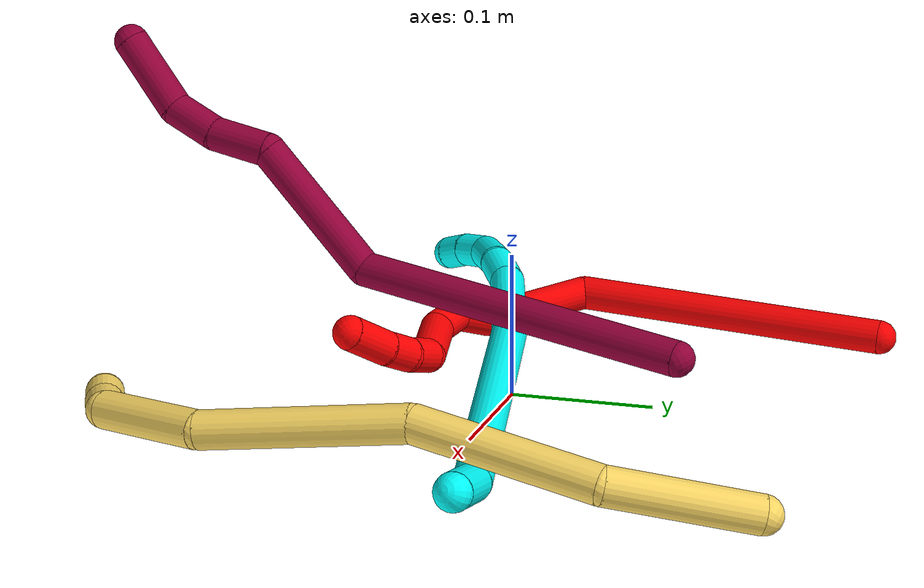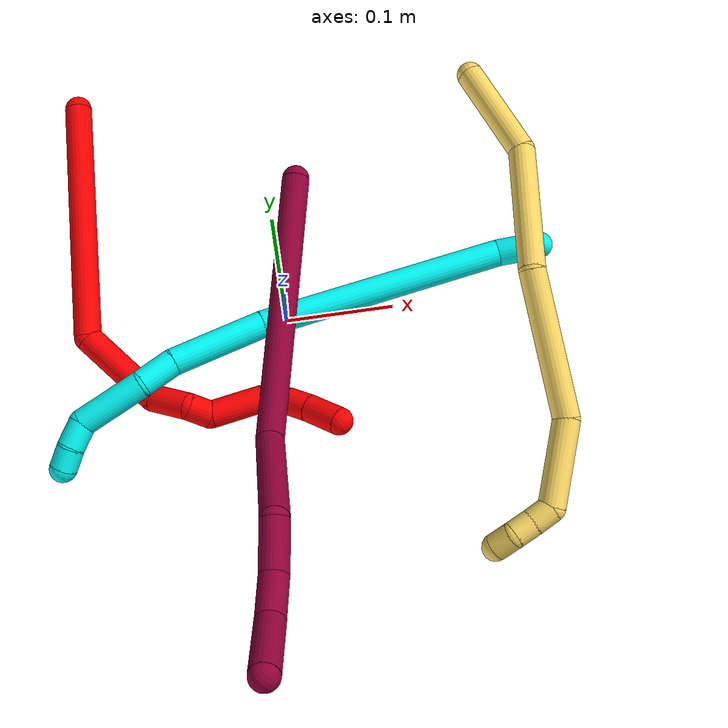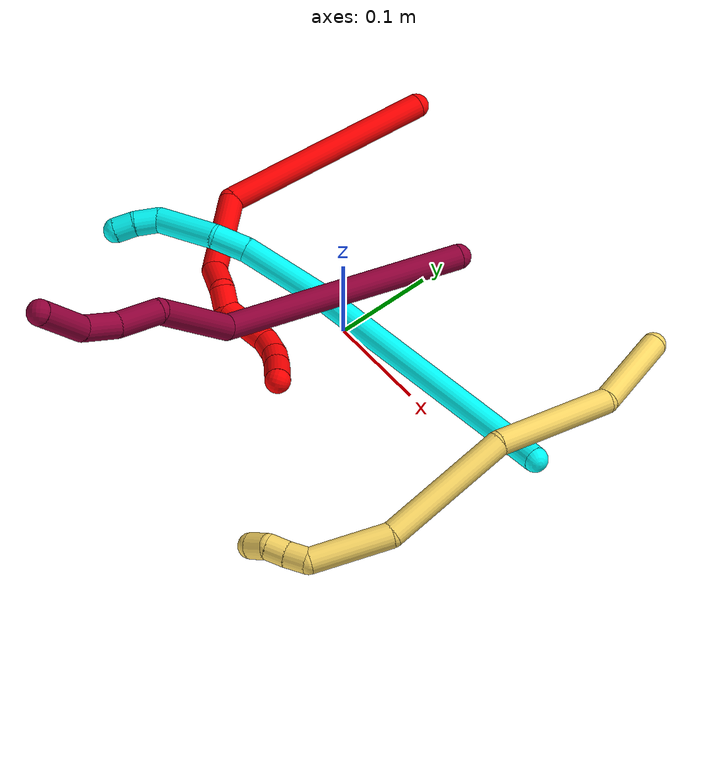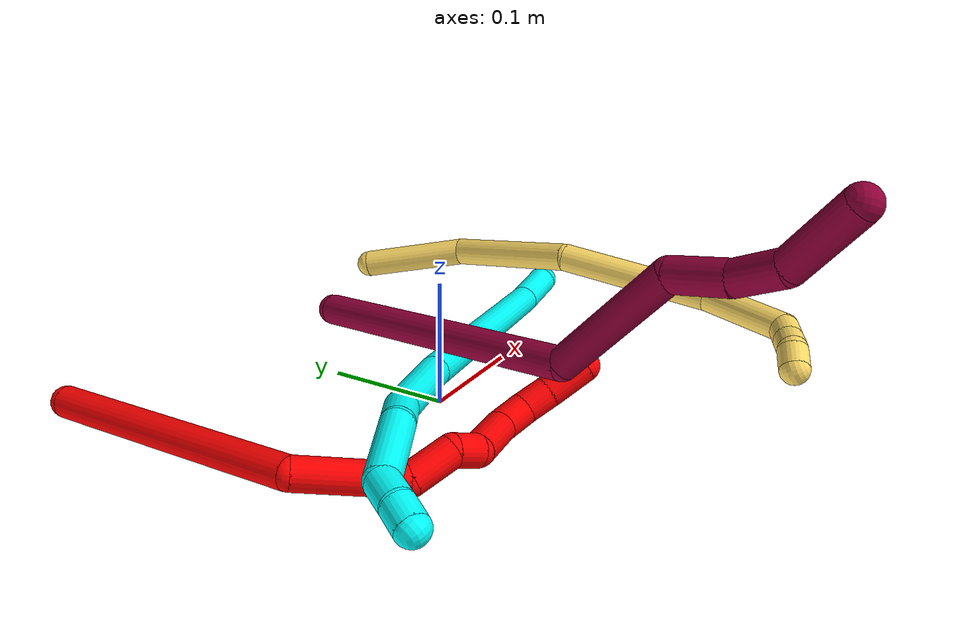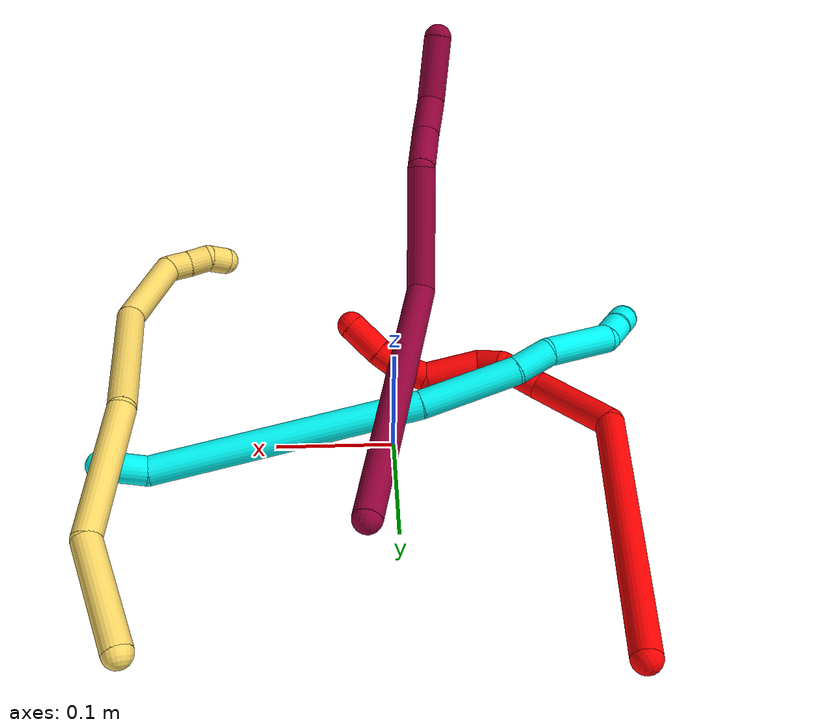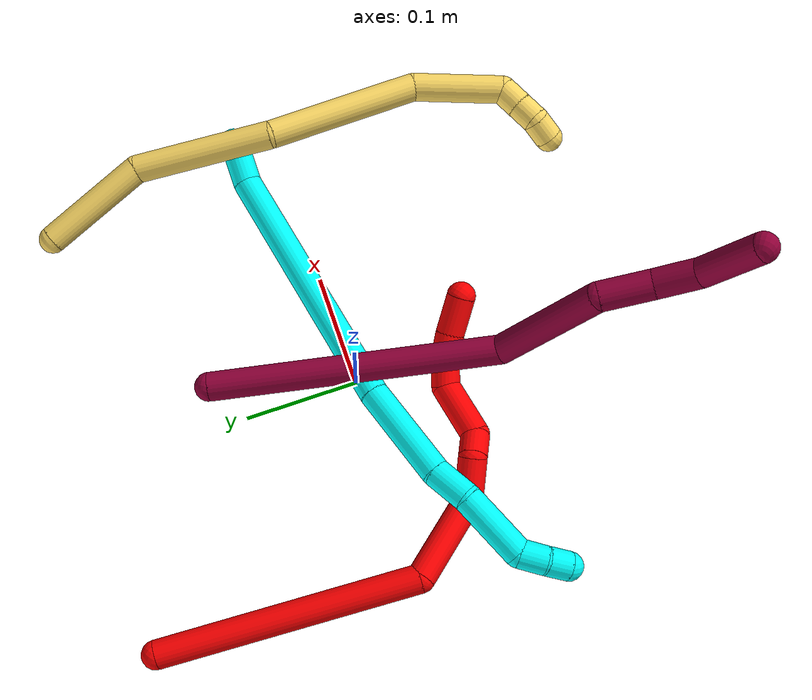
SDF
<sdf version="1.7">
 <world name="default">
  <model name="bin">
   <static>1</static>
   <link name="bottom">
    <collision name="collision-bottom">
     <pose>0 0 -0.01 0 -0 0</pose>
     <geometry><box><size>0.8 0.6 0.02</size></box></geometry>
     <surface>
      <friction><ode><mu>100</mu><mu2>100</mu2></ode></friction>
      <contact><collide_bitmask>65535</collide_bitmask></contact>
     </surface>
    </collision>
   </link>
   <link name="west_wall">
    <collision name="collision-west_wall">
     <pose>-0.41 0 0.1 0 -0 0</pose>
     <geometry><box><size>0.02 0.6 0.2</size></box></geometry>
     <surface>
      <friction><ode><mu>100</mu><mu2>100</mu2></ode></friction>
      <contact><collide_bitmask>65535</collide_bitmask></contact>
     </surface>
    </collision>
   </link>
   <link name="east_wall">
    <collision name="collision-east_wall">
     <pose>0.41 0 0.1 0 -0 0</pose>
     <geometry><box><size>0.02 0.6 0.2</size></box></geometry>
     <surface>
      <friction><ode><mu>100</mu><mu2>100</mu2></ode></friction>
      <contact><collide_bitmask>65535</collide_bitmask></contact>
     </surface>
    </collision>
   </link>
   <link name="south_wall">
    <collision name="collision-south_wall">
     <pose>0 -0.31 0.1 0 -0 0</pose>
     <geometry><box><size>0.8 0.02 0.2</size></box></geometry>
     <surface>
      <friction><ode><mu>100</mu><mu2>100</mu2></ode></friction>
      <contact><collide_bitmask>65535</collide_bitmask></contact>
     </surface>
    </collision>
   </link>
   <link name="north_wall">
    <collision name="collision-north_wall">
     <pose>0 0.31 0.1 0 -0 0</pose>
     <geometry><box><size>0.8 0.02 0.2</size></box></geometry>
     <surface>
      <friction><ode><mu>100</mu><mu2>100</mu2></ode></friction>
      <contact><collide_bitmask>65535</collide_bitmask></contact>
     </surface>
    </collision>
   </link>
  </model>
  <model name="2">
   <static>0</static>
   <link name="2">
    <collision name="collision-cylinder-e_1_1_4">
     <pose>0.044159 -0.078227 0.070506 0.837261 0.39705 0.178542</pose>
     <geometry><cylinder><radius>0.0125</radius><length>0.22839</length></cylinder></geometry>
     <surface>
      <friction><ode><mu>1.16</mu><mu2>1.16</mu2><slip1>0</slip1><slip2>0</slip2></ode></friction>
      <contact><ode><kp>1e+06</kp><kd>1</kd><max_vel>0</max_vel><min_depth>0.001</min_depth></ode></contact>
     </surface>
    </collision>
    <visual name="visual-cylinder-e_1_1_4">
     <pose>0.044159 -0.078227 0.070506 0.837261 0.39705 0.178542</pose>
     <geometry><cylinder><radius>0.0125</radius><length>0.22839</length></cylinder></geometry>
     <material><ambient>1 0 0 1</ambient></material>
    </visual>
    <collision name="collision-cylinder-e_2_4_5">
     <pose>0.104609 -0.193443 0.136747 1.68561 0.412411 0.46103</pose>
     <geometry><cylinder><radius>0.0125</radius><length>0.081285</length></cylinder></geometry>
     <surface>
      <friction><ode><mu>1.16</mu><mu2>1.16</mu2><slip1>0</slip1><slip2>0</slip2></ode></friction>
      <contact><ode><kp>1e+06</kp><kd>1</kd><max_vel>0</max_vel><min_depth>0.001</min_depth></ode></contact>
     </surface>
    </collision>
    <visual name="visual-cylinder-e_2_4_5">
     <pose>0.104609 -0.193443 0.136747 1.68561 0.412411 0.46103</pose>
     <geometry><cylinder><radius>0.0125</radius><length>0.081285</length></cylinder></geometry>
     <material><ambient>1 0 0 1</ambient></material>
    </visual>
    <collision name="collision-cylinder-e_3_5_6">
     <pose>0.134838 -0.239312 0.124642 2.29406 0.866455 1.59583</pose>
     <geometry><cylinder><radius>0.0125</radius><length>0.036582</length></cylinder></geometry>
     <surface>
      <friction><ode><mu>1.16</mu><mu2>1.16</mu2><slip1>0</slip1><slip2>0</slip2></ode></friction>
      <contact><ode><kp>1e+06</kp><kd>1</kd><max_vel>0</max_vel><min_depth>0.001</min_depth></ode></contact>
     </surface>
    </collision>
    <visual name="visual-cylinder-e_3_5_6">
     <pose>0.134838 -0.239312 0.124642 2.29406 0.866455 1.59583</pose>
     <geometry><cylinder><radius>0.0125</radius><length>0.036582</length></cylinder></geometry>
     <material><ambient>1 0 0 1</ambient></material>
    </visual>
    <collision name="collision-cylinder-e_4_6_7">
     <pose>0.151626 -0.257352 0.111375 2.10574 0.261536 0.453678</pose>
     <geometry><cylinder><radius>0.0125</radius><length>0.022047</length></cylinder></geometry>
     <surface>
      <friction><ode><mu>1.16</mu><mu2>1.16</mu2><slip1>0</slip1><slip2>0</slip2></ode></friction>
      <contact><ode><kp>1e+06</kp><kd>1</kd><max_vel>0</max_vel><min_depth>0.001</min_depth></ode></contact>
     </surface>
    </collision>
    <visual name="visual-cylinder-e_4_6_7">
     <pose>0.151626 -0.257352 0.111375 2.10574 0.261536 0.453678</pose>
     <geometry><cylinder><radius>0.0125</radius><length>0.022047</length></cylinder></geometry>
     <material><ambient>1 0 0 1</ambient></material>
    </visual>
    <collision name="collision-cylinder-e_5_7_8">
     <pose>0.160027 -0.27515 0.083024 2.78124 0.222833 1.1016</pose>
     <geometry><cylinder><radius>0.0125</radius><length>0.050234</length></cylinder></geometry>
     <surface>
      <friction><ode><mu>1.16</mu><mu2>1.16</mu2><slip1>0</slip1><slip2>0</slip2></ode></friction>
      <contact><ode><kp>1e+06</kp><kd>1</kd><max_vel>0</max_vel><min_depth>0.001</min_depth></ode></contact>
     </surface>
    </collision>
    <visual name="visual-cylinder-e_5_7_8">
     <pose>0.160027 -0.27515 0.083024 2.78124 0.222833 1.1016</pose>
     <geometry><cylinder><radius>0.0125</radius><length>0.050234</length></cylinder></geometry>
     <material><ambient>1 0 0 1</ambient></material>
    </visual>
    <collision name="collision-cylinder-e_6_8_9">
     <pose>0.174145 -0.289466 0.053288 2.44674 0.768028 1.68022</pose>
     <geometry><cylinder><radius>0.0125</radius><length>0.024663</length></cylinder></geometry>
     <surface>
      <friction><ode><mu>1.16</mu><mu2>1.16</mu2><slip1>0</slip1><slip2>0</slip2></ode></friction>
      <contact><ode><kp>1e+06</kp><kd>1</kd><max_vel>0</max_vel><min_depth>0.001</min_depth></ode></contact>
     </surface>
    </collision>
    <visual name="visual-cylinder-e_6_8_9">
     <pose>0.174145 -0.289466 0.053288 2.44674 0.768028 1.68022</pose>
     <geometry><cylinder><radius>0.0125</radius><length>0.024663</length></cylinder></geometry>
     <material><ambient>1 0 0 1</ambient></material>
    </visual>
    <collision name="collision-cylinder-e_7_9_10">
     <pose>0.19195 -0.300532 0.042936 2.15205 0.961648 1.53711</pose>
     <geometry><cylinder><radius>0.0125</radius><length>0.022529</length></cylinder></geometry>
     <surface>
      <friction><ode><mu>1.16</mu><mu2>1.16</mu2><slip1>0</slip1><slip2>0</slip2></ode></friction>
      <contact><ode><kp>1e+06</kp><kd>1</kd><max_vel>0</max_vel><min_depth>0.001</min_depth></ode></contact>
     </surface>
    </collision>
    <visual name="visual-cylinder-e_7_9_10">
     <pose>0.19195 -0.300532 0.042936 2.15205 0.961648 1.53711</pose>
     <geometry><cylinder><radius>0.0125</radius><length>0.022529</length></cylinder></geometry>
     <material><ambient>1 0 0 1</ambient></material>
    </visual>
    <collision name="collision-cylinder-e_8_10_2">
     <pose>0.21623 -0.313311 0.035832 2.02021 1.07134 1.51456</pose>
     <geometry><cylinder><radius>0.0125</radius><length>0.03427</length></cylinder></geometry>
     <surface>
      <friction><ode><mu>1.16</mu><mu2>1.16</mu2><slip1>0</slip1><slip2>0</slip2></ode></friction>
      <contact><ode><kp>1e+06</kp><kd>1</kd><max_vel>0</max_vel><min_depth>0.001</min_depth></ode></contact>
     </surface>
    </collision>
    <visual name="visual-cylinder-e_8_10_2">
     <pose>0.21623 -0.313311 0.035832 2.02021 1.07134 1.51456</pose>
     <geometry><cylinder><radius>0.0125</radius><length>0.03427</length></cylinder></geometry>
     <material><ambient>1 0 0 1</ambient></material>
    </visual>
    <collision name="collision-sphere-2">
     <pose>0.231272 -0.320703 0.032266 0 -0 0</pose>
     <geometry><sphere><radius>0.0125</radius></sphere></geometry>
     <surface>
      <friction><ode><mu>1.16</mu><mu2>1.16</mu2><slip1>0</slip1><slip2>0</slip2></ode></friction>
      <contact><ode><kp>1e+06</kp><kd>1</kd><max_vel>0</max_vel><min_depth>0.001</min_depth></ode></contact>
     </surface>
    </collision>
    <visual name="visual-sphere-2">
     <pose>0.231272 -0.320703 0.032266 0 -0 0</pose>
     <geometry><sphere><radius>0.0125</radius></sphere></geometry>
     <material><ambient>1 0 0 1</ambient></material>
    </visual>
    <collision name="collision-sphere-10">
     <pose>0.201189 -0.305919 0.039397 0 -0 0</pose>
     <geometry><sphere><radius>0.0125</radius></sphere></geometry>
     <surface>
      <friction><ode><mu>1.16</mu><mu2>1.16</mu2><slip1>0</slip1><slip2>0</slip2></ode></friction>
      <contact><ode><kp>1e+06</kp><kd>1</kd><max_vel>0</max_vel><min_depth>0.001</min_depth></ode></contact>
     </surface>
    </collision>
    <visual name="visual-sphere-10">
     <pose>0.201189 -0.305919 0.039397 0 -0 0</pose>
     <geometry><sphere><radius>0.0125</radius></sphere></geometry>
     <material><ambient>1 0 0 1</ambient></material>
    </visual>
    <collision name="collision-sphere-9">
     <pose>0.182711 -0.295145 0.046475 0 -0 0</pose>
     <geometry><sphere><radius>0.0125</radius></sphere></geometry>
     <surface>
      <friction><ode><mu>1.16</mu><mu2>1.16</mu2><slip1>0</slip1><slip2>0</slip2></ode></friction>
      <contact><ode><kp>1e+06</kp><kd>1</kd><max_vel>0</max_vel><min_depth>0.001</min_depth></ode></contact>
     </surface>
    </collision>
    <visual name="visual-sphere-9">
     <pose>0.182711 -0.295145 0.046475 0 -0 0</pose>
     <geometry><sphere><radius>0.0125</radius></sphere></geometry>
     <material><ambient>1 0 0 1</ambient></material>
    </visual>
    <collision name="collision-sphere-4">
     <pose>0.088318 -0.156453 0.141012 0 -0 0</pose>
     <geometry><sphere><radius>0.0125</radius></sphere></geometry>
     <surface>
      <friction><ode><mu>1.16</mu><mu2>1.16</mu2><slip1>0</slip1><slip2>0</slip2></ode></friction>
      <contact><ode><kp>1e+06</kp><kd>1</kd><max_vel>0</max_vel><min_depth>0.001</min_depth></ode></contact>
     </surface>
    </collision>
    <visual name="visual-sphere-4">
     <pose>0.088318 -0.156453 0.141012 0 -0 0</pose>
     <geometry><sphere><radius>0.0125</radius></sphere></geometry>
     <material><ambient>1 0 0 1</ambient></material>
    </visual>
    <collision name="collision-sphere-1">
     <geometry><sphere><radius>0.0125</radius></sphere></geometry>
     <surface>
      <friction><ode><mu>1.16</mu><mu2>1.16</mu2><slip1>0</slip1><slip2>0</slip2></ode></friction>
      <contact><ode><kp>1e+06</kp><kd>1</kd><max_vel>0</max_vel><min_depth>0.001</min_depth></ode></contact>
     </surface>
    </collision>
    <visual name="visual-sphere-1">
     <geometry><sphere><radius>0.0125</radius></sphere></geometry>
     <material><ambient>1 0 0 1</ambient></material>
    </visual>
    <collision name="collision-sphere-8">
     <pose>0.165578 -0.283787 0.060101 0 -0 0</pose>
     <geometry><sphere><radius>0.0125</radius></sphere></geometry>
     <surface>
      <friction><ode><mu>1.16</mu><mu2>1.16</mu2><slip1>0</slip1><slip2>0</slip2></ode></friction>
      <contact><ode><kp>1e+06</kp><kd>1</kd><max_vel>0</max_vel><min_depth>0.001</min_depth></ode></contact>
     </surface>
    </collision>
    <visual name="visual-sphere-8">
     <pose>0.165578 -0.283787 0.060101 0 -0 0</pose>
     <geometry><sphere><radius>0.0125</radius></sphere></geometry>
     <material><ambient>1 0 0 1</ambient></material>
    </visual>
    <collision name="collision-sphere-5">
     <pose>0.120899 -0.230433 0.132481 0 -0 0</pose>
     <geometry><sphere><radius>0.0125</radius></sphere></geometry>
     <surface>
      <friction><ode><mu>1.16</mu><mu2>1.16</mu2><slip1>0</slip1><slip2>0</slip2></ode></friction>
      <contact><ode><kp>1e+06</kp><kd>1</kd><max_vel>0</max_vel><min_depth>0.001</min_depth></ode></contact>
     </surface>
    </collision>
    <visual name="visual-sphere-5">
     <pose>0.120899 -0.230433 0.132481 0 -0 0</pose>
     <geometry><sphere><radius>0.0125</radius></sphere></geometry>
     <material><ambient>1 0 0 1</ambient></material>
    </visual>
    <collision name="collision-sphere-6">
     <pose>0.148776 -0.248191 0.116804 0 -0 0</pose>
     <geometry><sphere><radius>0.0125</radius></sphere></geometry>
     <surface>
      <friction><ode><mu>1.16</mu><mu2>1.16</mu2><slip1>0</slip1><slip2>0</slip2></ode></friction>
      <contact><ode><kp>1e+06</kp><kd>1</kd><max_vel>0</max_vel><min_depth>0.001</min_depth></ode></contact>
     </surface>
    </collision>
    <visual name="visual-sphere-6">
     <pose>0.148776 -0.248191 0.116804 0 -0 0</pose>
     <geometry><sphere><radius>0.0125</radius></sphere></geometry>
     <material><ambient>1 0 0 1</ambient></material>
    </visual>
    <collision name="collision-sphere-7">
     <pose>0.154476 -0.266513 0.105946 0 -0 0</pose>
     <geometry><sphere><radius>0.0125</radius></sphere></geometry>
     <surface>
      <friction><ode><mu>1.16</mu><mu2>1.16</mu2><slip1>0</slip1><slip2>0</slip2></ode></friction>
      <contact><ode><kp>1e+06</kp><kd>1</kd><max_vel>0</max_vel><min_depth>0.001</min_depth></ode></contact>
     </surface>
    </collision>
    <visual name="visual-sphere-7">
     <pose>0.154476 -0.266513 0.105946 0 -0 0</pose>
     <geometry><sphere><radius>0.0125</radius></sphere></geometry>
     <material><ambient>1 0 0 1</ambient></material>
    </visual>
    <inertial>
     <pose>0.101865 -0.172975 0.083827 0 -0 0</pose>
     <mass>0.5</mass>
     <inertia>
      <ixx>0.001177</ixx>
      <ixy>0</ixy>
      <ixz>0</ixz>
      <iyy>0.000897</iyy>
      <iyz>0</iyz>
      <izz>0.000324</izz>
     </inertia>
    </inertial>
   </link>
   <pose>-0.170132 0.232157 0.011666 1.31181 -1.00429 -0.740061</pose>
  </model>
  <model name="3">
   <static>0</static>
   <link name="3">
    <collision name="collision-cylinder-e_1_1_4">
     <pose>-0.00609 -0.001461 -0.018527 3.06292 -0.316646 -2.65822</pose>
     <geometry><cylinder><radius>0.0125</radius><length>0.039114</length></cylinder></geometry>
     <surface>
      <friction><ode><mu>1.16</mu><mu2>1.16</mu2><slip1>0</slip1><slip2>0</slip2></ode></friction>
      <contact><ode><kp>1e+06</kp><kd>1</kd><max_vel>0</max_vel><min_depth>0.001</min_depth></ode></contact>
     </surface>
    </collision>
    <visual name="visual-cylinder-e_1_1_4">
     <pose>-0.00609 -0.001461 -0.018527 3.06292 -0.316646 -2.65822</pose>
     <geometry><cylinder><radius>0.0125</radius><length>0.039114</length></cylinder></geometry>
     <material><ambient>0.003922 1 0.996078 1</ambient></material>
    </visual>
    <collision name="collision-cylinder-e_2_4_5">
     <pose>-0.084536 -0.001102 -0.128209 -3.12163 -0.670842 3.08435</pose>
     <geometry><cylinder><radius>0.0125</radius><length>0.232791</length></cylinder></geometry>
     <surface>
      <friction><ode><mu>1.16</mu><mu2>1.16</mu2><slip1>0</slip1><slip2>0</slip2></ode></friction>
      <contact><ode><kp>1e+06</kp><kd>1</kd><max_vel>0</max_vel><min_depth>0.001</min_depth></ode></contact>
     </surface>
    </collision>
    <visual name="visual-cylinder-e_2_4_5">
     <pose>-0.084536 -0.001102 -0.128209 -3.12163 -0.670842 3.08435</pose>
     <geometry><cylinder><radius>0.0125</radius><length>0.232791</length></cylinder></geometry>
     <material><ambient>0.003922 1 0.996078 1</ambient></material>
    </visual>
    <collision name="collision-cylinder-e_3_5_6">
     <pose>-0.187599 -0.001217 -0.250776 3.08007 -0.773073 -2.99067</pose>
     <geometry><cylinder><radius>0.0125</radius><length>0.087939</length></cylinder></geometry>
     <surface>
      <friction><ode><mu>1.16</mu><mu2>1.16</mu2><slip1>0</slip1><slip2>0</slip2></ode></friction>
      <contact><ode><kp>1e+06</kp><kd>1</kd><max_vel>0</max_vel><min_depth>0.001</min_depth></ode></contact>
     </surface>
    </collision>
    <visual name="visual-cylinder-e_3_5_6">
     <pose>-0.187599 -0.001217 -0.250776 3.08007 -0.773073 -2.99067</pose>
     <geometry><cylinder><radius>0.0125</radius><length>0.087939</length></cylinder></geometry>
     <material><ambient>0.003922 1 0.996078 1</ambient></material>
    </visual>
    <collision name="collision-cylinder-e_4_6_7">
     <pose>-0.23184 -0.006142 -0.29203 2.84673 -0.920982 -2.55982</pose>
     <geometry><cylinder><radius>0.0125</radius><length>0.034</length></cylinder></geometry>
     <surface>
      <friction><ode><mu>1.16</mu><mu2>1.16</mu2><slip1>0</slip1><slip2>0</slip2></ode></friction>
      <contact><ode><kp>1e+06</kp><kd>1</kd><max_vel>0</max_vel><min_depth>0.001</min_depth></ode></contact>
     </surface>
    </collision>
    <visual name="visual-cylinder-e_4_6_7">
     <pose>-0.23184 -0.006142 -0.29203 2.84673 -0.920982 -2.55982</pose>
     <geometry><cylinder><radius>0.0125</radius><length>0.034</length></cylinder></geometry>
     <material><ambient>0.003922 1 0.996078 1</ambient></material>
    </visual>
    <collision name="collision-cylinder-e_5_7_8">
     <pose>-0.263586 -0.019009 -0.32492 2.73669 -0.628118 -2.01443</pose>
     <geometry><cylinder><radius>0.0125</radius><length>0.061981</length></cylinder></geometry>
     <surface>
      <friction><ode><mu>1.16</mu><mu2>1.16</mu2><slip1>0</slip1><slip2>0</slip2></ode></friction>
      <contact><ode><kp>1e+06</kp><kd>1</kd><max_vel>0</max_vel><min_depth>0.001</min_depth></ode></contact>
     </surface>
    </collision>
    <visual name="visual-cylinder-e_5_7_8">
     <pose>-0.263586 -0.019009 -0.32492 2.73669 -0.628118 -2.01443</pose>
     <geometry><cylinder><radius>0.0125</radius><length>0.061981</length></cylinder></geometry>
     <material><ambient>0.003922 1 0.996078 1</ambient></material>
    </visual>
    <collision name="collision-cylinder-e_6_8_9">
     <pose>-0.290233 -0.036512 -0.351678 2.02365 -0.782825 -1.16644</pose>
     <geometry><cylinder><radius>0.0125</radius><length>0.023924</length></cylinder></geometry>
     <surface>
      <friction><ode><mu>1.16</mu><mu2>1.16</mu2><slip1>0</slip1><slip2>0</slip2></ode></friction>
      <contact><ode><kp>1e+06</kp><kd>1</kd><max_vel>0</max_vel><min_depth>0.001</min_depth></ode></contact>
     </surface>
    </collision>
    <visual name="visual-cylinder-e_6_8_9">
     <pose>-0.290233 -0.036512 -0.351678 2.02365 -0.782825 -1.16644</pose>
     <geometry><cylinder><radius>0.0125</radius><length>0.023924</length></cylinder></geometry>
     <material><ambient>0.003922 1 0.996078 1</ambient></material>
    </visual>
    <collision name="collision-cylinder-e_7_9_2">
     <pose>-0.304333 -0.051937 -0.35849 1.94935 -0.593548 -0.846933</pose>
     <geometry><cylinder><radius>0.0125</radius><length>0.02025</length></cylinder></geometry>
     <surface>
      <friction><ode><mu>1.16</mu><mu2>1.16</mu2><slip1>0</slip1><slip2>0</slip2></ode></friction>
      <contact><ode><kp>1e+06</kp><kd>1</kd><max_vel>0</max_vel><min_depth>0.001</min_depth></ode></contact>
     </surface>
    </collision>
    <visual name="visual-cylinder-e_7_9_2">
     <pose>-0.304333 -0.051937 -0.35849 1.94935 -0.593548 -0.846933</pose>
     <geometry><cylinder><radius>0.0125</radius><length>0.02025</length></cylinder></geometry>
     <material><ambient>0.003922 1 0.996078 1</ambient></material>
    </visual>
    <collision name="collision-sphere-2">
     <pose>-0.309996 -0.059736 -0.361592 0 -0 0</pose>
     <geometry><sphere><radius>0.0125</radius></sphere></geometry>
     <surface>
      <friction><ode><mu>1.16</mu><mu2>1.16</mu2><slip1>0</slip1><slip2>0</slip2></ode></friction>
      <contact><ode><kp>1e+06</kp><kd>1</kd><max_vel>0</max_vel><min_depth>0.001</min_depth></ode></contact>
     </surface>
    </collision>
    <visual name="visual-sphere-2">
     <pose>-0.309996 -0.059736 -0.361592 0 -0 0</pose>
     <geometry><sphere><radius>0.0125</radius></sphere></geometry>
     <material><ambient>0.003922 1 0.996078 1</ambient></material>
    </visual>
    <collision name="collision-sphere-9">
     <pose>-0.29867 -0.044138 -0.355388 0 -0 0</pose>
     <geometry><sphere><radius>0.0125</radius></sphere></geometry>
     <surface>
      <friction><ode><mu>1.16</mu><mu2>1.16</mu2><slip1>0</slip1><slip2>0</slip2></ode></friction>
      <contact><ode><kp>1e+06</kp><kd>1</kd><max_vel>0</max_vel><min_depth>0.001</min_depth></ode></contact>
     </surface>
    </collision>
    <visual name="visual-sphere-9">
     <pose>-0.29867 -0.044138 -0.355388 0 -0 0</pose>
     <geometry><sphere><radius>0.0125</radius></sphere></geometry>
     <material><ambient>0.003922 1 0.996078 1</ambient></material>
    </visual>
    <collision name="collision-sphere-4">
     <pose>-0.01218 -0.002921 -0.037055 0 -0 0</pose>
     <geometry><sphere><radius>0.0125</radius></sphere></geometry>
     <surface>
      <friction><ode><mu>1.16</mu><mu2>1.16</mu2><slip1>0</slip1><slip2>0</slip2></ode></friction>
      <contact><ode><kp>1e+06</kp><kd>1</kd><max_vel>0</max_vel><min_depth>0.001</min_depth></ode></contact>
     </surface>
    </collision>
    <visual name="visual-sphere-4">
     <pose>-0.01218 -0.002921 -0.037055 0 -0 0</pose>
     <geometry><sphere><radius>0.0125</radius></sphere></geometry>
     <material><ambient>0.003922 1 0.996078 1</ambient></material>
    </visual>
    <collision name="collision-sphere-1">
     <geometry><sphere><radius>0.0125</radius></sphere></geometry>
     <surface>
      <friction><ode><mu>1.16</mu><mu2>1.16</mu2><slip1>0</slip1><slip2>0</slip2></ode></friction>
      <contact><ode><kp>1e+06</kp><kd>1</kd><max_vel>0</max_vel><min_depth>0.001</min_depth></ode></contact>
     </surface>
    </collision>
    <visual name="visual-sphere-1">
     <geometry><sphere><radius>0.0125</radius></sphere></geometry>
     <material><ambient>0.003922 1 0.996078 1</ambient></material>
    </visual>
    <collision name="collision-sphere-8">
     <pose>-0.281797 -0.028887 -0.347968 0 -0 0</pose>
     <geometry><sphere><radius>0.0125</radius></sphere></geometry>
     <surface>
      <friction><ode><mu>1.16</mu><mu2>1.16</mu2><slip1>0</slip1><slip2>0</slip2></ode></friction>
      <contact><ode><kp>1e+06</kp><kd>1</kd><max_vel>0</max_vel><min_depth>0.001</min_depth></ode></contact>
     </surface>
    </collision>
    <visual name="visual-sphere-8">
     <pose>-0.281797 -0.028887 -0.347968 0 -0 0</pose>
     <geometry><sphere><radius>0.0125</radius></sphere></geometry>
     <material><ambient>0.003922 1 0.996078 1</ambient></material>
    </visual>
    <collision name="collision-sphere-5">
     <pose>-0.156893 0.000718 -0.219363 0 -0 0</pose>
     <geometry><sphere><radius>0.0125</radius></sphere></geometry>
     <surface>
      <friction><ode><mu>1.16</mu><mu2>1.16</mu2><slip1>0</slip1><slip2>0</slip2></ode></friction>
      <contact><ode><kp>1e+06</kp><kd>1</kd><max_vel>0</max_vel><min_depth>0.001</min_depth></ode></contact>
     </surface>
    </collision>
    <visual name="visual-sphere-5">
     <pose>-0.156893 0.000718 -0.219363 0 -0 0</pose>
     <geometry><sphere><radius>0.0125</radius></sphere></geometry>
     <material><ambient>0.003922 1 0.996078 1</ambient></material>
    </visual>
    <collision name="collision-sphere-6">
     <pose>-0.218305 -0.003153 -0.282188 0 -0 0</pose>
     <geometry><sphere><radius>0.0125</radius></sphere></geometry>
     <surface>
      <friction><ode><mu>1.16</mu><mu2>1.16</mu2><slip1>0</slip1><slip2>0</slip2></ode></friction>
      <contact><ode><kp>1e+06</kp><kd>1</kd><max_vel>0</max_vel><min_depth>0.001</min_depth></ode></contact>
     </surface>
    </collision>
    <visual name="visual-sphere-6">
     <pose>-0.218305 -0.003153 -0.282188 0 -0 0</pose>
     <geometry><sphere><radius>0.0125</radius></sphere></geometry>
     <material><ambient>0.003922 1 0.996078 1</ambient></material>
    </visual>
    <collision name="collision-sphere-7">
     <pose>-0.245375 -0.009131 -0.301872 0 -0 0</pose>
     <geometry><sphere><radius>0.0125</radius></sphere></geometry>
     <surface>
      <friction><ode><mu>1.16</mu><mu2>1.16</mu2><slip1>0</slip1><slip2>0</slip2></ode></friction>
      <contact><ode><kp>1e+06</kp><kd>1</kd><max_vel>0</max_vel><min_depth>0.001</min_depth></ode></contact>
     </surface>
    </collision>
    <visual name="visual-sphere-7">
     <pose>-0.245375 -0.009131 -0.301872 0 -0 0</pose>
     <geometry><sphere><radius>0.0125</radius></sphere></geometry>
     <material><ambient>0.003922 1 0.996078 1</ambient></material>
    </visual>
    <inertial>
     <pose>-0.147482 -0.007466 -0.196729 0 -0 0</pose>
     <mass>0.5</mass>
     <inertia>
      <ixx>-0.000892</ixx>
      <ixy>0</ixy>
      <ixz>0</ixz>
      <iyy>0.001157</iyy>
      <iyz>0</iyz>
      <izz>0.000691</izz>
     </inertia>
    </inertial>
   </link>
   <pose>0.242499 0.034643 0.019365 1.09236 0.668712 0.972904</pose>
  </model>
  <model name="5">
   <static>0</static>
   <link name="5">
    <collision name="collision-cylinder-e_1_1_4">
     <pose>0.015587 0.000925 0.046092 -0.020066 0.326039 -0.003301</pose>
     <geometry><cylinder><radius>0.0125</radius><length>0.09733</length></cylinder></geometry>
     <surface>
      <friction><ode><mu>1.16</mu><mu2>1.16</mu2><slip1>0</slip1><slip2>0</slip2></ode></friction>
      <contact><ode><kp>1e+06</kp><kd>1</kd><max_vel>0</max_vel><min_depth>0.001</min_depth></ode></contact>
     </surface>
    </collision>
    <visual name="visual-cylinder-e_1_1_4">
     <pose>0.015587 0.000925 0.046092 -0.020066 0.326039 -0.003301</pose>
     <geometry><cylinder><radius>0.0125</radius><length>0.09733</length></cylinder></geometry>
     <material><ambient>1 0.858824 0.4 1</ambient></material>
    </visual>
    <collision name="collision-cylinder-e_2_4_5">
     <pose>0.043192 -0.023821 0.14736 0.435465 0.194975 0.043267</pose>
     <geometry><cylinder><radius>0.0125</radius><length>0.124061</length></cylinder></geometry>
     <surface>
      <friction><ode><mu>1.16</mu><mu2>1.16</mu2><slip1>0</slip1><slip2>0</slip2></ode></friction>
      <contact><ode><kp>1e+06</kp><kd>1</kd><max_vel>0</max_vel><min_depth>0.001</min_depth></ode></contact>
     </surface>
    </collision>
    <visual name="visual-cylinder-e_2_4_5">
     <pose>0.043192 -0.023821 0.14736 0.435465 0.194975 0.043267</pose>
     <geometry><cylinder><radius>0.0125</radius><length>0.124061</length></cylinder></geometry>
     <material><ambient>1 0.858824 0.4 1</ambient></material>
    </visual>
    <collision name="collision-cylinder-e_3_5_6">
     <pose>0.089741 -0.071415 0.257502 0.37952 0.528205 0.103786</pose>
     <geometry><cylinder><radius>0.0125</radius><length>0.13703</length></cylinder></geometry>
     <surface>
      <friction><ode><mu>1.16</mu><mu2>1.16</mu2><slip1>0</slip1><slip2>0</slip2></ode></friction>
      <contact><ode><kp>1e+06</kp><kd>1</kd><max_vel>0</max_vel><min_depth>0.001</min_depth></ode></contact>
     </surface>
    </collision>
    <visual name="visual-cylinder-e_3_5_6">
     <pose>0.089741 -0.071415 0.257502 0.37952 0.528205 0.103786</pose>
     <geometry><cylinder><radius>0.0125</radius><length>0.13703</length></cylinder></geometry>
     <material><ambient>1 0.858824 0.4 1</ambient></material>
    </visual>
    <collision name="collision-cylinder-e_4_6_7">
     <pose>0.134893 -0.119142 0.341356 0.72906 0.267646 0.102653</pose>
     <geometry><cylinder><radius>0.0125</radius><length>0.080326</length></cylinder></geometry>
     <surface>
      <friction><ode><mu>1.16</mu><mu2>1.16</mu2><slip1>0</slip1><slip2>0</slip2></ode></friction>
      <contact><ode><kp>1e+06</kp><kd>1</kd><max_vel>0</max_vel><min_depth>0.001</min_depth></ode></contact>
     </surface>
    </collision>
    <visual name="visual-cylinder-e_4_6_7">
     <pose>0.134893 -0.119142 0.341356 0.72906 0.267646 0.102653</pose>
     <geometry><cylinder><radius>0.0125</radius><length>0.080326</length></cylinder></geometry>
     <material><ambient>1 0.858824 0.4 1</ambient></material>
    </visual>
    <collision name="collision-cylinder-e_5_7_8">
     <pose>0.14444 -0.155327 0.372142 1.38987 -0.101386 -0.084545</pose>
     <geometry><cylinder><radius>0.0125</radius><length>0.02122</length></cylinder></geometry>
     <surface>
      <friction><ode><mu>1.16</mu><mu2>1.16</mu2><slip1>0</slip1><slip2>0</slip2></ode></friction>
      <contact><ode><kp>1e+06</kp><kd>1</kd><max_vel>0</max_vel><min_depth>0.001</min_depth></ode></contact>
     </surface>
    </collision>
    <visual name="visual-cylinder-e_5_7_8">
     <pose>0.14444 -0.155327 0.372142 1.38987 -0.101386 -0.084545</pose>
     <geometry><cylinder><radius>0.0125</radius><length>0.02122</length></cylinder></geometry>
     <material><ambient>1 0.858824 0.4 1</ambient></material>
    </visual>
    <collision name="collision-cylinder-e_6_8_9">
     <pose>0.141418 -0.175331 0.37598 1.37193 -0.196018 -0.160624</pose>
     <geometry><cylinder><radius>0.0125</radius><length>0.020012</length></cylinder></geometry>
     <surface>
      <friction><ode><mu>1.16</mu><mu2>1.16</mu2><slip1>0</slip1><slip2>0</slip2></ode></friction>
      <contact><ode><kp>1e+06</kp><kd>1</kd><max_vel>0</max_vel><min_depth>0.001</min_depth></ode></contact>
     </surface>
    </collision>
    <visual name="visual-cylinder-e_6_8_9">
     <pose>0.141418 -0.175331 0.37598 1.37193 -0.196018 -0.160624</pose>
     <geometry><cylinder><radius>0.0125</radius><length>0.020012</length></cylinder></geometry>
     <material><ambient>1 0.858824 0.4 1</ambient></material>
    </visual>
    <collision name="collision-cylinder-e_7_9_2">
     <pose>0.141771 -0.194673 0.37727 1.63747 0.232052 0.247904</pose>
     <geometry><cylinder><radius>0.0125</radius><length>0.020021</length></cylinder></geometry>
     <surface>
      <friction><ode><mu>1.16</mu><mu2>1.16</mu2><slip1>0</slip1><slip2>0</slip2></ode></friction>
      <contact><ode><kp>1e+06</kp><kd>1</kd><max_vel>0</max_vel><min_depth>0.001</min_depth></ode></contact>
     </surface>
    </collision>
    <visual name="visual-cylinder-e_7_9_2">
     <pose>0.141771 -0.194673 0.37727 1.63747 0.232052 0.247904</pose>
     <geometry><cylinder><radius>0.0125</radius><length>0.020021</length></cylinder></geometry>
     <material><ambient>1 0.858824 0.4 1</ambient></material>
    </visual>
    <collision name="collision-sphere-2">
     <pose>0.144073 -0.204393 0.376621 0 -0 0</pose>
     <geometry><sphere><radius>0.0125</radius></sphere></geometry>
     <surface>
      <friction><ode><mu>1.16</mu><mu2>1.16</mu2><slip1>0</slip1><slip2>0</slip2></ode></friction>
      <contact><ode><kp>1e+06</kp><kd>1</kd><max_vel>0</max_vel><min_depth>0.001</min_depth></ode></contact>
     </surface>
    </collision>
    <visual name="visual-sphere-2">
     <pose>0.144073 -0.204393 0.376621 0 -0 0</pose>
     <geometry><sphere><radius>0.0125</radius></sphere></geometry>
     <material><ambient>1 0.858824 0.4 1</ambient></material>
    </visual>
    <collision name="collision-sphere-9">
     <pose>0.139469 -0.184952 0.377919 0 -0 0</pose>
     <geometry><sphere><radius>0.0125</radius></sphere></geometry>
     <surface>
      <friction><ode><mu>1.16</mu><mu2>1.16</mu2><slip1>0</slip1><slip2>0</slip2></ode></friction>
      <contact><ode><kp>1e+06</kp><kd>1</kd><max_vel>0</max_vel><min_depth>0.001</min_depth></ode></contact>
     </surface>
    </collision>
    <visual name="visual-sphere-9">
     <pose>0.139469 -0.184952 0.377919 0 -0 0</pose>
     <geometry><sphere><radius>0.0125</radius></sphere></geometry>
     <material><ambient>1 0.858824 0.4 1</ambient></material>
    </visual>
    <collision name="collision-sphere-4">
     <pose>0.031174 0.00185 0.092184 0 -0 0</pose>
     <geometry><sphere><radius>0.0125</radius></sphere></geometry>
     <surface>
      <friction><ode><mu>1.16</mu><mu2>1.16</mu2><slip1>0</slip1><slip2>0</slip2></ode></friction>
      <contact><ode><kp>1e+06</kp><kd>1</kd><max_vel>0</max_vel><min_depth>0.001</min_depth></ode></contact>
     </surface>
    </collision>
    <visual name="visual-sphere-4">
     <pose>0.031174 0.00185 0.092184 0 -0 0</pose>
     <geometry><sphere><radius>0.0125</radius></sphere></geometry>
     <material><ambient>1 0.858824 0.4 1</ambient></material>
    </visual>
    <collision name="collision-sphere-1">
     <geometry><sphere><radius>0.0125</radius></sphere></geometry>
     <surface>
      <friction><ode><mu>1.16</mu><mu2>1.16</mu2><slip1>0</slip1><slip2>0</slip2></ode></friction>
      <contact><ode><kp>1e+06</kp><kd>1</kd><max_vel>0</max_vel><min_depth>0.001</min_depth></ode></contact>
     </surface>
    </collision>
    <visual name="visual-sphere-1">
     <geometry><sphere><radius>0.0125</radius></sphere></geometry>
     <material><ambient>1 0.858824 0.4 1</ambient></material>
    </visual>
    <collision name="collision-sphere-8">
     <pose>0.143367 -0.16571 0.374042 0 -0 0</pose>
     <geometry><sphere><radius>0.0125</radius></sphere></geometry>
     <surface>
      <friction><ode><mu>1.16</mu><mu2>1.16</mu2><slip1>0</slip1><slip2>0</slip2></ode></friction>
      <contact><ode><kp>1e+06</kp><kd>1</kd><max_vel>0</max_vel><min_depth>0.001</min_depth></ode></contact>
     </surface>
    </collision>
    <visual name="visual-sphere-8">
     <pose>0.143367 -0.16571 0.374042 0 -0 0</pose>
     <geometry><sphere><radius>0.0125</radius></sphere></geometry>
     <material><ambient>1 0.858824 0.4 1</ambient></material>
    </visual>
    <collision name="collision-sphere-5">
     <pose>0.05521 -0.049491 0.202536 0 -0 0</pose>
     <geometry><sphere><radius>0.0125</radius></sphere></geometry>
     <surface>
      <friction><ode><mu>1.16</mu><mu2>1.16</mu2><slip1>0</slip1><slip2>0</slip2></ode></friction>
      <contact><ode><kp>1e+06</kp><kd>1</kd><max_vel>0</max_vel><min_depth>0.001</min_depth></ode></contact>
     </surface>
    </collision>
    <visual name="visual-sphere-5">
     <pose>0.05521 -0.049491 0.202536 0 -0 0</pose>
     <geometry><sphere><radius>0.0125</radius></sphere></geometry>
     <material><ambient>1 0.858824 0.4 1</ambient></material>
    </visual>
    <collision name="collision-sphere-6">
     <pose>0.124271 -0.093339 0.312469 0 -0 0</pose>
     <geometry><sphere><radius>0.0125</radius></sphere></geometry>
     <surface>
      <friction><ode><mu>1.16</mu><mu2>1.16</mu2><slip1>0</slip1><slip2>0</slip2></ode></friction>
      <contact><ode><kp>1e+06</kp><kd>1</kd><max_vel>0</max_vel><min_depth>0.001</min_depth></ode></contact>
     </surface>
    </collision>
    <visual name="visual-sphere-6">
     <pose>0.124271 -0.093339 0.312469 0 -0 0</pose>
     <geometry><sphere><radius>0.0125</radius></sphere></geometry>
     <material><ambient>1 0.858824 0.4 1</ambient></material>
    </visual>
    <collision name="collision-sphere-7">
     <pose>0.145514 -0.144944 0.370243 0 -0 0</pose>
     <geometry><sphere><radius>0.0125</radius></sphere></geometry>
     <surface>
      <friction><ode><mu>1.16</mu><mu2>1.16</mu2><slip1>0</slip1><slip2>0</slip2></ode></friction>
      <contact><ode><kp>1e+06</kp><kd>1</kd><max_vel>0</max_vel><min_depth>0.001</min_depth></ode></contact>
     </surface>
    </collision>
    <visual name="visual-sphere-7">
     <pose>0.145514 -0.144944 0.370243 0 -0 0</pose>
     <geometry><sphere><radius>0.0125</radius></sphere></geometry>
     <material><ambient>1 0.858824 0.4 1</ambient></material>
    </visual>
    <inertial>
     <pose>0.077483 -0.065847 0.216895 0 -0 0</pose>
     <mass>0.5</mass>
     <inertia><ixx>0.000517</ixx><ixy>0</ixy><ixz>0</ixz><iyy>0.000488</iyy><iyz>0</iyz><izz>2e-05</izz></inertia>
    </inertial>
   </link>
   <pose>0.208751 0.214399 0.012188 0.490738 0.977196 -0.778754</pose>
  </model>
  <model name="8">
   <static>0</static>
   <link name="8">
    <collision name="collision-cylinder-e_1_1_4">
     <pose>0.018554 -0.110537 0.053676 1.11874 0.149864 0.093932</pose>
     <geometry><cylinder><radius>0.0125</radius><length>0.248545</length></cylinder></geometry>
     <surface>
      <friction><ode><mu>1.16</mu><mu2>1.16</mu2><slip1>0</slip1><slip2>0</slip2></ode></friction>
      <contact><ode><kp>1e+06</kp><kd>1</kd><max_vel>0</max_vel><min_depth>0.001</min_depth></ode></contact>
     </surface>
    </collision>
    <visual name="visual-cylinder-e_1_1_4">
     <pose>0.018554 -0.110537 0.053676 1.11874 0.149864 0.093932</pose>
     <geometry><cylinder><radius>0.0125</radius><length>0.248545</length></cylinder></geometry>
     <material><ambient>0.584314 0 0.227451 1</ambient></material>
    </visual>
    <collision name="collision-cylinder-e_2_4_5">
     <pose>0.008883 -0.26727 0.115856 1.38874 -0.541062 -0.45391</pose>
     <geometry><cylinder><radius>0.0125</radius><length>0.109603</length></cylinder></geometry>
     <surface>
      <friction><ode><mu>1.16</mu><mu2>1.16</mu2><slip1>0</slip1><slip2>0</slip2></ode></friction>
      <contact><ode><kp>1e+06</kp><kd>1</kd><max_vel>0</max_vel><min_depth>0.001</min_depth></ode></contact>
     </surface>
    </collision>
    <visual name="visual-cylinder-e_2_4_5">
     <pose>0.008883 -0.26727 0.115856 1.38874 -0.541062 -0.45391</pose>
     <geometry><cylinder><radius>0.0125</radius><length>0.109603</length></cylinder></geometry>
     <material><ambient>0.584314 0 0.227451 1</ambient></material>
    </visual>
    <collision name="collision-cylinder-e_3_5_6">
     <pose>-0.01815 -0.333088 0.134822 1.08096 0.053537 0.032132</pose>
     <geometry><cylinder><radius>0.0125</radius><length>0.044534</length></cylinder></geometry>
     <surface>
      <friction><ode><mu>1.16</mu><mu2>1.16</mu2><slip1>0</slip1><slip2>0</slip2></ode></friction>
      <contact><ode><kp>1e+06</kp><kd>1</kd><max_vel>0</max_vel><min_depth>0.001</min_depth></ode></contact>
     </surface>
    </collision>
    <visual name="visual-cylinder-e_3_5_6">
     <pose>-0.01815 -0.333088 0.134822 1.08096 0.053537 0.032132</pose>
     <geometry><cylinder><radius>0.0125</radius><length>0.044534</length></cylinder></geometry>
     <material><ambient>0.584314 0 0.227451 1</ambient></material>
    </visual>
    <collision name="collision-cylinder-e_4_6_7">
     <pose>-0.019391 -0.370398 0.151077 1.25428 -0.129925 -0.094226</pose>
     <geometry><cylinder><radius>0.0125</radius><length>0.037544</length></cylinder></geometry>
     <surface>
      <friction><ode><mu>1.16</mu><mu2>1.16</mu2><slip1>0</slip1><slip2>0</slip2></ode></friction>
      <contact><ode><kp>1e+06</kp><kd>1</kd><max_vel>0</max_vel><min_depth>0.001</min_depth></ode></contact>
     </surface>
    </collision>
    <visual name="visual-cylinder-e_4_6_7">
     <pose>-0.019391 -0.370398 0.151077 1.25428 -0.129925 -0.094226</pose>
     <geometry><cylinder><radius>0.0125</radius><length>0.037544</length></cylinder></geometry>
     <material><ambient>0.584314 0 0.227451 1</ambient></material>
    </visual>
    <collision name="collision-cylinder-e_5_7_2">
     <pose>-0.036539 -0.414062 0.158277 1.51672 -0.514825 -0.488804</pose>
     <geometry><cylinder><radius>0.0125</radius><length>0.059775</length></cylinder></geometry>
     <surface>
      <friction><ode><mu>1.16</mu><mu2>1.16</mu2><slip1>0</slip1><slip2>0</slip2></ode></friction>
      <contact><ode><kp>1e+06</kp><kd>1</kd><max_vel>0</max_vel><min_depth>0.001</min_depth></ode></contact>
     </surface>
    </collision>
    <visual name="visual-cylinder-e_5_7_2">
     <pose>-0.036539 -0.414062 0.158277 1.51672 -0.514825 -0.488804</pose>
     <geometry><cylinder><radius>0.0125</radius><length>0.059775</length></cylinder></geometry>
     <material><ambient>0.584314 0 0.227451 1</ambient></material>
    </visual>
    <collision name="collision-sphere-2">
     <pose>-0.051255 -0.440037 0.159683 0 -0 0</pose>
     <geometry><sphere><radius>0.0125</radius></sphere></geometry>
     <surface>
      <friction><ode><mu>1.16</mu><mu2>1.16</mu2><slip1>0</slip1><slip2>0</slip2></ode></friction>
      <contact><ode><kp>1e+06</kp><kd>1</kd><max_vel>0</max_vel><min_depth>0.001</min_depth></ode></contact>
     </surface>
    </collision>
    <visual name="visual-sphere-2">
     <pose>-0.051255 -0.440037 0.159683 0 -0 0</pose>
     <geometry><sphere><radius>0.0125</radius></sphere></geometry>
     <material><ambient>0.584314 0 0.227451 1</ambient></material>
    </visual>
    <collision name="collision-sphere-7">
     <pose>-0.021823 -0.388087 0.156871 0 -0 0</pose>
     <geometry><sphere><radius>0.0125</radius></sphere></geometry>
     <surface>
      <friction><ode><mu>1.16</mu><mu2>1.16</mu2><slip1>0</slip1><slip2>0</slip2></ode></friction>
      <contact><ode><kp>1e+06</kp><kd>1</kd><max_vel>0</max_vel><min_depth>0.001</min_depth></ode></contact>
     </surface>
    </collision>
    <visual name="visual-sphere-7">
     <pose>-0.021823 -0.388087 0.156871 0 -0 0</pose>
     <geometry><sphere><radius>0.0125</radius></sphere></geometry>
     <material><ambient>0.584314 0 0.227451 1</ambient></material>
    </visual>
    <collision name="collision-sphere-6">
     <pose>-0.016959 -0.352709 0.145283 0 -0 0</pose>
     <geometry><sphere><radius>0.0125</radius></sphere></geometry>
     <surface>
      <friction><ode><mu>1.16</mu><mu2>1.16</mu2><slip1>0</slip1><slip2>0</slip2></ode></friction>
      <contact><ode><kp>1e+06</kp><kd>1</kd><max_vel>0</max_vel><min_depth>0.001</min_depth></ode></contact>
     </surface>
    </collision>
    <visual name="visual-sphere-6">
     <pose>-0.016959 -0.352709 0.145283 0 -0 0</pose>
     <geometry><sphere><radius>0.0125</radius></sphere></geometry>
     <material><ambient>0.584314 0 0.227451 1</ambient></material>
    </visual>
    <collision name="collision-sphere-5">
     <pose>-0.019342 -0.313468 0.124361 0 -0 0</pose>
     <geometry><sphere><radius>0.0125</radius></sphere></geometry>
     <surface>
      <friction><ode><mu>1.16</mu><mu2>1.16</mu2><slip1>0</slip1><slip2>0</slip2></ode></friction>
      <contact><ode><kp>1e+06</kp><kd>1</kd><max_vel>0</max_vel><min_depth>0.001</min_depth></ode></contact>
     </surface>
    </collision>
    <visual name="visual-sphere-5">
     <pose>-0.019342 -0.313468 0.124361 0 -0 0</pose>
     <geometry><sphere><radius>0.0125</radius></sphere></geometry>
     <material><ambient>0.584314 0 0.227451 1</ambient></material>
    </visual>
    <collision name="collision-sphere-1">
     <geometry><sphere><radius>0.0125</radius></sphere></geometry>
     <surface>
      <friction><ode><mu>1.16</mu><mu2>1.16</mu2><slip1>0</slip1><slip2>0</slip2></ode></friction>
      <contact><ode><kp>1e+06</kp><kd>1</kd><max_vel>0</max_vel><min_depth>0.001</min_depth></ode></contact>
     </surface>
    </collision>
    <visual name="visual-sphere-1">
     <geometry><sphere><radius>0.0125</radius></sphere></geometry>
     <material><ambient>0.584314 0 0.227451 1</ambient></material>
    </visual>
    <collision name="collision-sphere-4">
     <pose>0.037109 -0.221073 0.107351 0 -0 0</pose>
     <geometry><sphere><radius>0.0125</radius></sphere></geometry>
     <surface>
      <friction><ode><mu>1.16</mu><mu2>1.16</mu2><slip1>0</slip1><slip2>0</slip2></ode></friction>
      <contact><ode><kp>1e+06</kp><kd>1</kd><max_vel>0</max_vel><min_depth>0.001</min_depth></ode></contact>
     </surface>
    </collision>
    <visual name="visual-sphere-4">
     <pose>0.037109 -0.221073 0.107351 0 -0 0</pose>
     <geometry><sphere><radius>0.0125</radius></sphere></geometry>
     <material><ambient>0.584314 0 0.227451 1</ambient></material>
    </visual>
    <inertial>
     <pose>0.00373 -0.220514 0.094352 0 -0 0</pose>
     <mass>0.5</mass>
     <inertia>
      <ixx>0.001452</ixx>
      <ixy>0</ixy>
      <ixz>0</ixz>
      <iyy>0.000666</iyy>
      <iyz>0</iyz>
      <izz>0.001163</izz>
     </inertia>
    </inertial>
   </link>
   <pose>0.026061 0.122095 0.044351 -2.2333 0.982004 -2.90327</pose>
  </model>
 </world>
</sdf>
